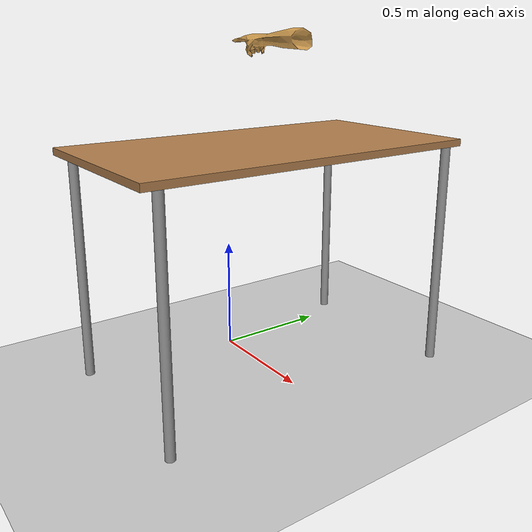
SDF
<?xml version="1.0" ?>
<sdf version="1.6">
  <world name="CRANE-X7 with Hnad">

    <include>
      <uri>model://sun</uri>
    </include>

    <model name="table">
      <include>
        <uri>model://table</uri>
      </include>

      <!-- X7を机の端に配置するため、机を移動、回転する -->
      <pose>0.29 0 0 0 0 1.5708</pose>
    </model>

    <model name="hand">
      <include>
        <uri>model://hand</uri>
      </include>

      <pose>0.40 0.05 1.3 0 0 0</pose>
    </model>

    <model name="ground_plane">
      <include>
        <uri>model://ground_plane</uri>
      </include>

      <joint name='ground_joint' type='fixed'>
        <parent>ground_plane::link</parent>
        <child>table::link</child>
      </joint>
    </model>
  </world>
</sdf>

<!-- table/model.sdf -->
<sdf version="1.5">
  <model name="table">
    <static>true</static>
    <link name="link">
      <collision name="surface">
        <pose>0 0 1.0 0 0 0</pose>
        <geometry>
          <box>
            <size>1.5 0.8 0.03</size>
          </box>
        </geometry>
        <surface>
          <friction>
            <ode>
              <mu>0.6</mu>
              <mu2>0.6</mu2>
            </ode>
          </friction>
        </surface>
      </collision>
      <visual name="visual1">
        <pose>0 0 1.0 0 0 0</pose>
        <geometry>
          <box>
            <size>1.5 0.8 0.03</size>
          </box>
        </geometry>
        <material>
          <script>
            <uri>model://media/materials/scripts/gazebo.material</uri>
            <name>Gazebo/Wood</name>
          </script>
        </material>
      </visual>
      <collision name="front_left_leg">
        <pose>0.68 0.38 0.5 0 0 0</pose>
        <geometry>
          <cylinder>
            <radius>0.02</radius>
            <length>1.0</length>
          </cylinder>
        </geometry>
      </collision>
      <visual name="front_left_leg">
        <pose>0.68 0.38 0.5 0 0 0</pose>
        <geometry>
          <cylinder>
            <radius>0.02</radius>
            <length>1.0</length>
          </cylinder>
        </geometry>
        <material>
          <script>
            <uri>model://media/materials/scripts/gazebo.material</uri>
            <name>Gazebo/Grey</name>
          </script>
        </material>
      </visual>
      <collision name="front_right_leg">
        <pose>0.68 -0.38 0.5 0 0 0</pose>
        <geometry>
          <cylinder>
            <radius>0.02</radius>
            <length>1.0</length>
          </cylinder>
        </geometry>
      </collision>
      <visual name="front_right_leg">
        <pose>0.68 -0.38 0.5 0 0 0</pose>
        <geometry>
          <cylinder>
            <radius>0.02</radius>
            <length>1.0</length>
          </cylinder>
        </geometry>
        <material>
          <script>
            <uri>model://media/materials/scripts/gazebo.material</uri>
            <name>Gazebo/Grey</name>
          </script>
        </material>
      </visual>
      <collision name="back_right_leg">
        <pose>-0.68 -0.38 0.5 0 0 0</pose>
        <geometry>
          <cylinder>
            <radius>0.02</radius>
            <length>1.0</length>
          </cylinder>
        </geometry>
      </collision>
      <visual name="back_right_leg">
        <pose>-0.68 -0.38 0.5 0 0 0</pose>
        <geometry>
          <cylinder>
            <radius>0.02</radius>
            <length>1.0</length>
          </cylinder>
        </geometry>
        <material>
          <script>
            <uri>model://media/materials/scripts/gazebo.material</uri>
            <name>Gazebo/Grey</name>
          </script>
        </material>
      </visual>
      <collision name="back_left_leg">
        <pose>-0.68 0.38 0.5 0 0 0</pose>
        <geometry>
          <cylinder>
            <radius>0.02</radius>
            <length>1.0</length>
          </cylinder>
        </geometry>
      </collision>
      <visual name="back_left_leg">
        <pose>-0.68 0.38 0.5 0 0 0</pose>
        <geometry>
          <cylinder>
            <radius>0.02</radius>
            <length>1.0</length>
          </cylinder>
        </geometry>
        <material>
          <script>
            <uri>model://media/materials/scripts/gazebo.material</uri>
            <name>Gazebo/Grey</name>
          </script>
        </material>
      </visual>
    </link>
  </model>
</sdf>

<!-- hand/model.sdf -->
<sdf version="1.5">
  <model name="boxNew">
    <static>true</static>
    <link name="link">
      <gravity>0</gravity>
      <pose>0 0 0.115 0 0 0</pose>
      <inertial>
        <mass>0.390</mass>
        <inertia>
          <ixx>0.00058</ixx>
          <ixy>0</ixy>
          <ixz>0</ixz>
          <iyy>0.00058</iyy>
          <iyz>0</iyz>
          <izz>0.00019</izz>
        </inertia>
      </inertial>
      <collision name="collision">
        <geometry>
            <mesh>
              <uri>/home/stefan/catkin_ws/src/dms_moveit/ur3_moveit/obstacles/hand/hand_low.stl</uri>
              <scale>0.001 0.001 0.001</scale>
          </mesh>
        </geometry>
        <surface>
            <contact>
              <ode>
                <max_vel>0.0001</max_vel>
                <min_depth>0.001</min_depth>
              </ode>
            </contact>
          </surface>
      </collision>
      <visual name="visual">
        <geometry>
          <mesh>
            <uri>/home/stefan/catkin_ws/src/dms_moveit/ur3_moveit/obstacles/hand/hand.stl</uri>
            <scale>0.001 0.001 0.001</scale>
          </mesh>
        </geometry>
        <material>
          <diffuse>0.8 0.6 0.3 1.0</diffuse>
        </material>
      </visual>
    </link>
  </model>
</sdf>
